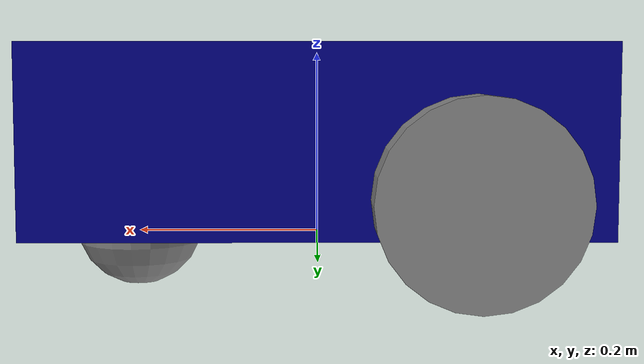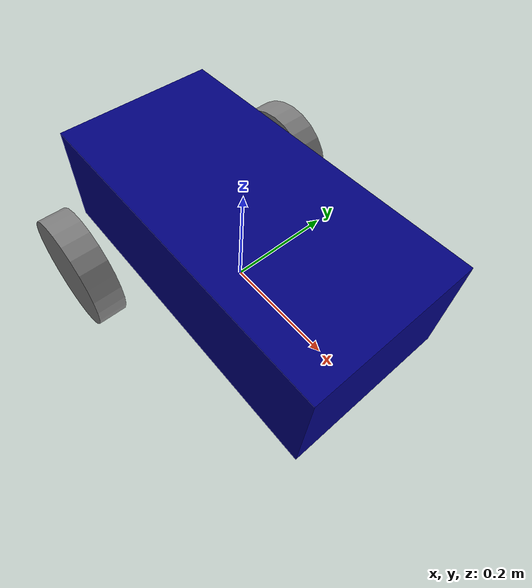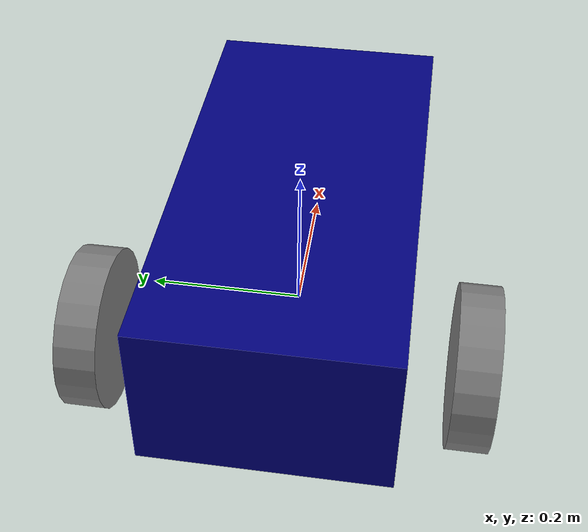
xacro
<?xml version="1.0"?>
<robot name="my_robot" xmlns:xacro="http://www.ros.org/wiki/xacro">
<xacro:property name="l" value="0.6" />

    <material name="blue">
        <color rgba="0 0 0.5 1" />
    </material>

    <material name="grey">
        <color rgba="0.5 0.5 0.5 1" />
    </material>

    <link name="base_footprint">
    </link>

    <link name="base_link">
        <visual>
            <geometry>
                <box size="${l} ${l/2} ${l/3}"/>
            </geometry>
            <origin xyz="0 0 0.1" rpy="0 0 0" />
            <material name="blue" />
        </visual>
    </link>
	<!---prefix add the name infront of function for multi use---->
	<xacro:macro name="wheel" params="prefix">
	<link name="${prefix}_link">
    <visual>
            <geometry>
                <cylinder radius="0.1" length="0.05" />
            </geometry>
            <origin xyz="0 0 0 " rpy="${pi /2 } 0 0" />
            <material name="grey" />
         </visual>
    </link>
	</xacro:macro>
	<xacro:wheel prefix="right" />
	<xacro:wheel prefix="left" />
    <link name="front">
        <visual>
            <geometry>
                <sphere radius="0.07" />
            </geometry>
            <origin xyz="0 0 0" rpy="0 0 0" />
            <material name="grey" />
        </visual>
    </link>

    <joint name="right" type="continuous">
        <parent link="base_link" />
        <child link="right_link" />
        <origin xyz="${-l/4} -0.230 0.05" rpy="0 0 0" />
        <axis xyz="0 1 0" />
    </joint>

    <joint name="left" type="continuous">
        <parent link="base_link" />
        <child link="left_link" />
        <origin xyz="${-l/4} 0.230 0.05" rpy="0 0 0" />
        <axis xyz="0 1 0" />
    </joint>

    <joint name="front1" type="revolute">
        <parent link="base_link" />
        <child link="front" />
        <origin xyz="${l/3} 0 0.0" rpy="0 0 0" />
        <axis xyz="1 1 1" />
        <limit effort="10.0" lower="-1.57" upper="1.57" velocity="1.0"/>
    </joint>

    <joint name="ground" type="fixed">
        <parent link="base_footprint" />
        <child link="base_link" />
        <origin xyz="0 0 0.01" rpy="0 0 0" />
    </joint>
</robot>
